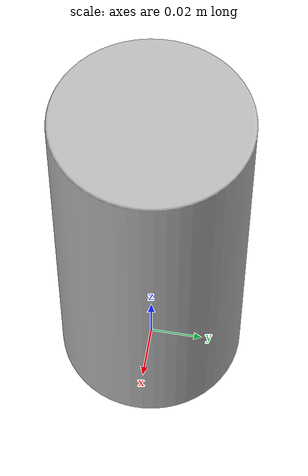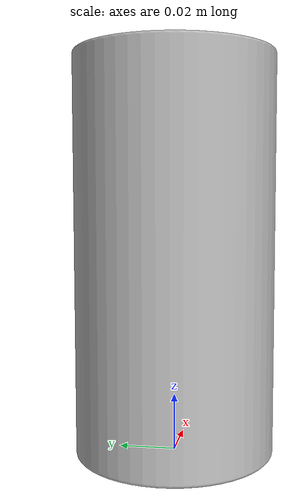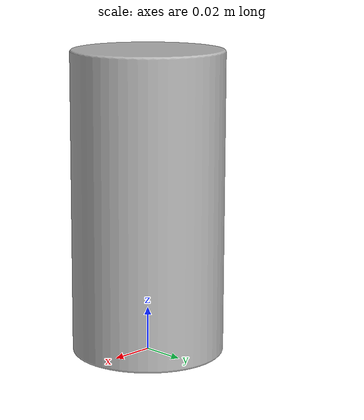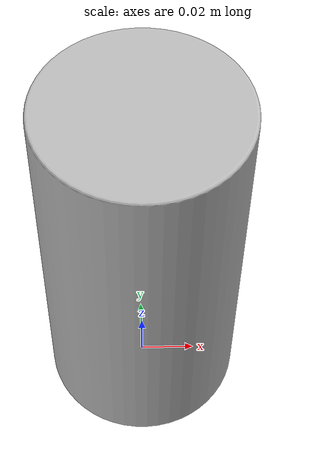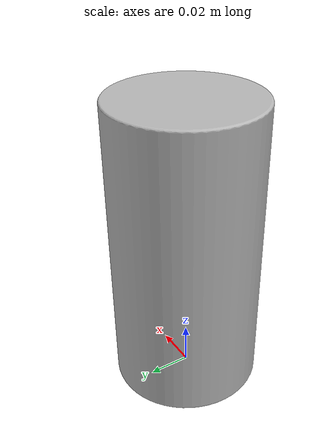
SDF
<?xml version="1.0" ?>
<sdf version="1.4">
  <model name="Chip Star">
    <link name="chip_star_link">
      <inertial>
        <pose>0.0 0.0 0.07 0 0 0</pose>
        <mass>0.07</mass>
        <inertia>
          <ixx>0.00047877</ixx>
          <ixy>0</ixy>
          <ixz>0</ixz>
          <izz>0.00004288</izz>
          <iyz>0</iyz>
          <iyy>0.00047877</iyy>
        </inertia>
      </inertial>

      <visual name="chip_star_visual">
        <pose>0 0 0 0 0 3.1415</pose>
        <geometry>
          <mesh>
            <uri>model://chip_star/meshes/chip_star.dae</uri>
          </mesh>
        </geometry>
      </visual>

      <collision name="chip_star_collision">
        <pose>0 0 0 0 0 3.1415</pose>
        <geometry>
          <mesh>
            <uri>model://chip_star/meshes/chip_star.dae</uri>
          </mesh>
        </geometry>
      </collision>

    </link>
  </model>
</sdf>
